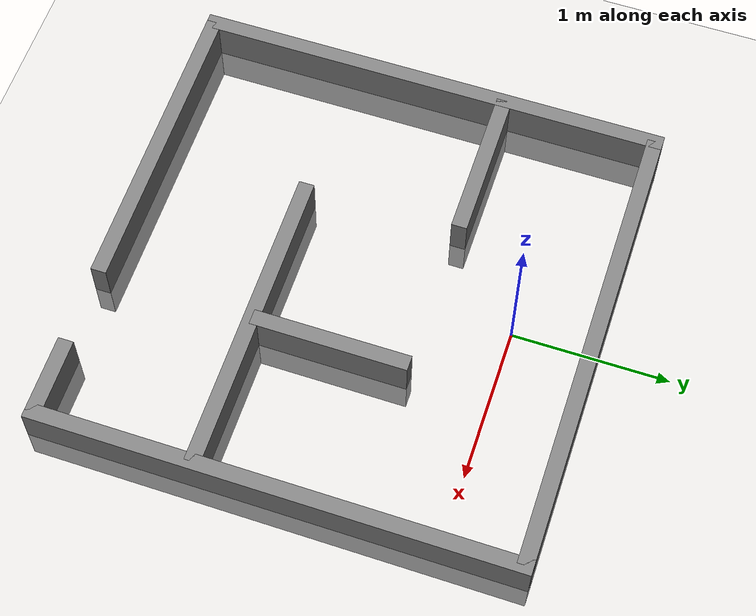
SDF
<?xml version="1.0" ?>
<sdf version="1.6">
    <world name="default">

        <!-- A light source -->
        <include>
            <uri>model://sun</uri>
        </include>

        <!-- Ground plane -->
        <include>
            <uri>model://ground_plane</uri>
        </include>

        <!-- Simple Maze -->
        <model name="Simple_Maze">
            <static>true</static>
            <pose>0 0.5 0 0 0 0</pose>

            <!-- First section of the outer wall -->
            <link name="outer_wall_1">
                <collision name="collision_1">
                    <geometry>
                        <box>
                            <size>3 0.1 0.5</size> <!-- Depth=1m, Width=0.1m, Height=0.5m -->
                        </box>
                    </geometry>
                </collision>
                <visual name="visual_1">
                <geometry>
                    <box>
                        <size>3 0.1 0.5</size> <!-- Same size as collision -->
                    </box>
                </geometry>
                <material>
                    <ambient>0.5 0.5 0.5 1</ambient>
                    <diffuse>0.5 0.5 0.5 1</diffuse>
                    <specular>0.1 0.1 0.1 1</specular>
                </material>
                </visual>
            </link>
            <!-- Second section of the outer wall -->
            <link name="outer_wall_2">
                <pose>-1.5 -1.5 0 0 0 1.57</pose> <!-- Position it at the end of the first wall, rotated 90 degrees -->
                <collision name="collision_2">
                    <geometry>
                        <box>
                            <size>3.1 0.1 0.5</size> <!-- Same size as first section -->
                        </box>
                    </geometry>
                </collision>
                <visual name="visual_2">
                    <geometry>
                        <box>
                            <size>3.1 0.1 0.5</size>
                        </box>
                    </geometry>
                    <material>
                        <ambient>0.5 0.5 0.5 1</ambient>
                        <diffuse>0.5 0.5 0.5 1</diffuse>
                        <specular>0.1 0.1 0.1 1</specular>
                    </material>
                </visual>
            </link>
            <!-- Third section of the outer wall -->
            <link name="outer_wall_3">
                <pose>1.5 -1.5 0 0 0 1.57</pose>
                <collision name="collision_2">
                    <geometry>
                        <box>
                        <size>3.1 0.1 0.5</size> <!-- Same size as first section -->
                        </box>
                    </geometry>
                </collision>
                <visual name="visual_2">
                    <geometry>
                        <box>
                            <size>3.1 0.1 0.5</size>
                        </box>
                    </geometry>
                    <material>
                        <ambient>0.5 0.5 0.5 1</ambient>
                        <diffuse>0.5 0.5 0.5 1</diffuse>
                        <specular>0.1 0.1 0.1 1</specular>
                    </material>
                </visual>
            </link>
            <!-- Entrance Section -->
            <link name="outer_wall_entrance_long">
                <pose>-0.5 -3 0 0 0 0</pose>
                <collision name="collision_1">
                    <geometry>
                        <box>
                            <size>2 0.1 0.5</size> <!-- Depth=1m, Width=0.1m, Height=0.5m -->
                        </box>
                    </geometry>
                </collision>
                <visual name="visual_1">
                <geometry>
                    <box>
                        <size>2 0.1 0.5</size> <!-- Same size as collision -->
                    </box>
                </geometry>
                <material>
                    <ambient>0.5 0.5 0.5 1</ambient>
                    <diffuse>0.5 0.5 0.5 1</diffuse>
                    <specular>0.1 0.1 0.1 1</specular>
                </material>
                </visual>
            </link>
            <link name="outer_wall_entrance_short">
                <pose>1.25 -3 0 0 0 0</pose>
                <collision name="collision_1">
                    <geometry>
                        <box>
                            <size>0.5 0.1 0.5</size> <!-- Depth=1m, Width=0.1m, Height=0.5m -->
                        </box>
                    </geometry>
                </collision>
                <visual name="visual_1">
                <geometry>
                    <box>
                        <size>0.5 0.1 0.5</size> <!-- Same size as collision -->
                    </box>
                </geometry>
                <material>
                    <ambient>0.5 0.5 0.5 1</ambient>
                    <diffuse>0.5 0.5 0.5 1</diffuse>
                    <specular>0.1 0.1 0.1 1</specular>
                </material>
                </visual>
            </link>
             <!-- Maze Section -->
            <link name="divider_1">
                <pose>0.5 -2 0 0 0 0</pose>
                <collision name="collision_1">
                    <geometry>
                        <box>
                            <size>2 0.1 0.5</size>
                        </box>
                    </geometry>
                </collision>
                <visual name="visual_1">
                <geometry>
                    <box>
                        <size>2 0.1 0.5</size>
                    </box>
                </geometry>
                <material>
                    <ambient>0.5 0.5 0.5 1</ambient>
                    <diffuse>0.5 0.5 0.5 1</diffuse>
                    <specular>0.1 0.1 0.1 1</specular>
                </material>
                </visual>
            </link>
            <link name="divider_2">
                <pose>-1 -1 0 0 0 0</pose>
                <collision name="collision_1">
                    <geometry>
                        <box>
                            <size>1 0.1 0.5</size>
                        </box>
                    </geometry>
                </collision>
                <visual name="visual_1">
                <geometry>
                    <box>
                        <size>1 0.1 0.5</size>
                    </box>
                </geometry>
                <material>
                    <ambient>0.5 0.5 0.5 1</ambient>
                    <diffuse>0.5 0.5 0.5 1</diffuse>
                    <specular>0.1 0.1 0.1 1</specular>
                </material>
                </visual>
            </link>
            <link name="divider_3">
                <pose>0.5 -1.5 0 0 0 1.57</pose>
                <collision name="collision_1">
                    <geometry>
                        <box>
                            <size>1 0.1 0.5</size>
                        </box>
                    </geometry>
                </collision>
                <visual name="visual_1">
                <geometry>
                    <box>
                        <size>1 0.1 0.5</size>
                    </box>
                </geometry>
                <material>
                    <ambient>0.5 0.5 0.5 1</ambient>
                    <diffuse>0.5 0.5 0.5 1</diffuse>
                    <specular>0.1 0.1 0.1 1</specular>
                </material>
                </visual>
            </link>
        </model>
    </world>
</sdf>
